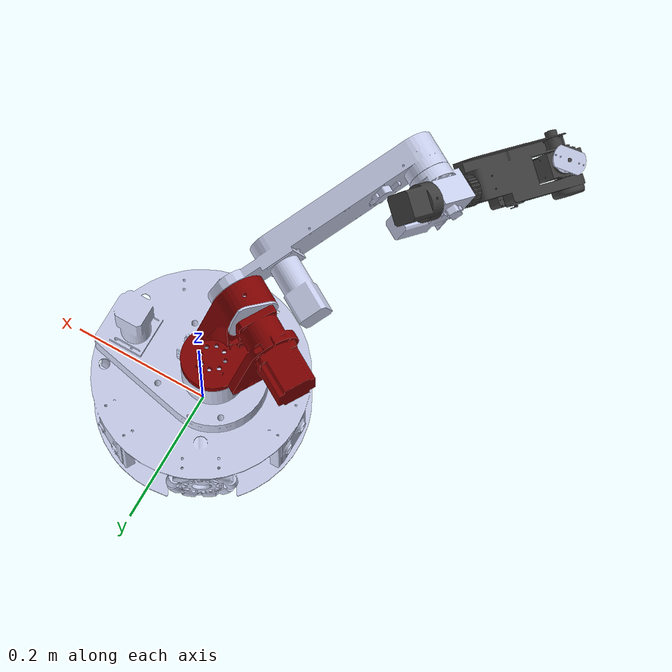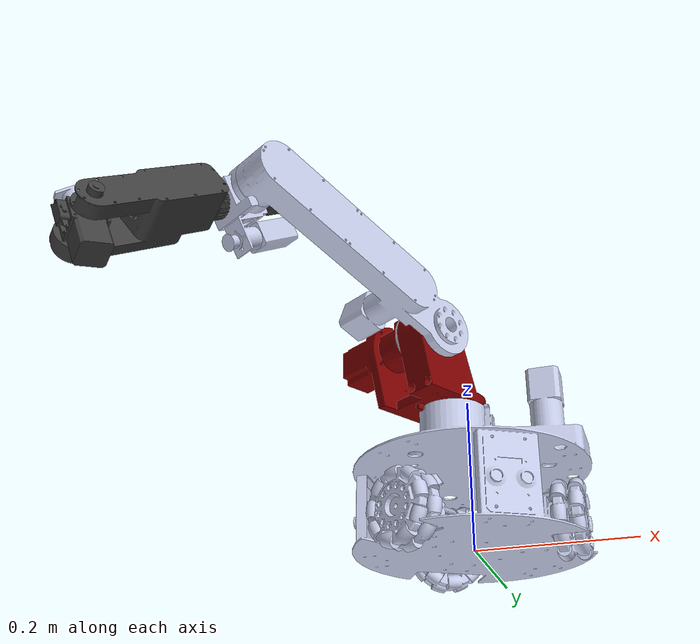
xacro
<?xml version="1.0" encoding="utf-8"?>

<robot name="mrm" xmlns:xacro="http://www.ros.org/wiki/xacro">

  <link name="dummy"> </link>

  <link
    name="base_link">
    <inertial>
      <origin
        xyz="0.0165249628989607 0.00409986602389259 0.0781788290296329"
        rpy="0 0 0" />
      <mass
        value="167.100405445867" />
      <inertia
        ixx="000.389655431629312"
        ixy="537.317989393359E-06"
        ixz="-278.402379892452E-06"
        iyy="000.464142057314943"
        iyz="685.671608678509E-08"
        izz="000.81767891501105" />
    </inertial>
    <visual>
      <origin
        xyz="0 0 0"
        rpy="0 0 0" />
      <geometry>
        <mesh
          filename="package://mrm_description/meshes/base_link.STL" />
      </geometry>
      <material
        name="">
        <color
          rgba="0.792156862745098 0.819607843137255 0.933333333333333 1" />
      </material>
    </visual>
    <collision>
      <origin
        xyz="0 0 0"
        rpy="0 0 0" />
      <geometry>
        <mesh
          filename="package://mrm_description/meshes/base_link.STL" />
      </geometry>
    </collision>
  </link>

  <joint name="dummy_joint" type="fixed">
     <parent link="dummy"/>
     <child link="base_link"/>
  </joint>

  <link
    name="link_01">
    <inertial>
      <origin
        xyz="0.0672767756765975 2.98471164450476E-10 -2.54315929426596E-10"
        rpy="0 0 0" />
      <mass
        value="019.6260586154462" />
      <inertia
        ixx="725.703453165916E-05"
        ixy="-368.01509681729E-12"
        ixz="249.729356473699E-12"
        iyy="403.260652913686E-05"
        iyz="404.539666739104E-12"
        izz="403.260679465834E-05" />
    </inertial>
    <visual>
      <origin
        xyz="0 0 0"
        rpy="0 0 0" />
      <geometry>
        <mesh
          filename="package://mrm_description/meshes/link_01.STL" />
      </geometry>
      <material
        name="">
        <color
          rgba="0.792156862745098 0.819607843137255 0.933333333333333 1" />
      </material>
    </visual>
    <collision>
      <origin
        xyz="0 0 0"
        rpy="0 0 0" />
      <geometry>
        <mesh
          filename="package://mrm_description/meshes/link_01.STL" />
      </geometry>
    </collision>
  </link>
  <joint
    name="base_link__link_01"
    type="continuous">
    <origin
      xyz="-0.0271913742094736 -0.0470968416584263 0.02885"
      rpy="2.85358761494837 0 -2.0943951023932" />
    <parent
      link="base_link" />
    <child
      link="link_01" />
    <axis
      xyz="-1 0 0" />
    <limit effort="100" velocity="100"/>
    <dynamics damping="0.1" friction="0.1" />
  </joint>
  <link
    name="link_02">
    <inertial>
      <origin
        xyz="0.0203119238637717 1.02704067472814E-10 -1.48791812204507E-10"
        rpy="0 0 0" />
      <mass
        value="018.8138057154393" />
      <inertia
        ixx="721.667925935897E-05"
        ixy="314.461314501011E-12"
        ixz="163.704370735285E-12"
        iyy="395.012859157598E-05"
        iyz="-340.546378650128E-12"
        izz="395.012896092445E-05" />
    </inertial>
    <visual>
      <origin
        xyz="0 0 0"
        rpy="0 0 0" />
      <geometry>
        <mesh
          filename="package://mrm_description/meshes/link_02.STL" />
      </geometry>
      <material
        name="">
        <color
          rgba="0.792156862745098 0.819607843137255 0.933333333333333 1" />
      </material>
    </visual>
    <collision>
      <origin
        xyz="0 0 0"
        rpy="0 0 0" />
      <geometry>
        <mesh
          filename="package://mrm_description/meshes/link_02.STL" />
      </geometry>
    </collision>
  </link>
  <joint
    name="base_link__link_02"
    type="continuous">
    <origin
      xyz="0.101764514288352 0 0.02885"
      rpy="-0.0819857576579163 0 0" />
    <parent
      link="base_link" />
    <child
      link="link_02" />
    <axis
      xyz="1 0 0" />
    <limit effort="100" velocity="100"/>
    <dynamics damping="0.1" friction="0.1" />
  </joint>
  <link
    name="link_03">
    <inertial>
      <origin
        xyz="0.00555996459306347 -7.44617145720383E-11 -3.91775001329364E-10"
        rpy="0 0 0" />
      <mass
        value="018.8138059255539" />
      <inertia
        ixx="721.667937235871E-05"
        ixy="-148.975764619711E-12"
        ixz="-370.604573301297E-12"
        iyy="395.012916802367E-05"
        iyz="-291.006406694619E-12"
        izz="395.012851637099E-05" />
    </inertial>
    <visual>
      <origin
        xyz="0 0 0"
        rpy="0 0 0" />
      <geometry>
        <mesh
          filename="package://mrm_description/meshes/link_03.STL" />
      </geometry>
      <material
        name="">
        <color
          rgba="0.792156862745098 0.819607843137255 0.933333333333333 1" />
      </material>
    </visual>
    <collision>
      <origin
        xyz="0 0 0"
        rpy="0 0 0" />
      <geometry>
        <mesh
          filename="package://mrm_description/meshes/link_03.STL" />
      </geometry>
    </collision>
  </link>
  <joint
    name="base_link__link_03"
    type="continuous">
    <origin
      xyz="-0.0582582368342076 0.10090622615623 0.0288500000000003"
      rpy="-3.13075110136062 0 2.09439510239319" />
    <parent
      link="base_link" />
    <child
      link="link_03" />
    <axis
      xyz="-1 0 0" />
    <limit effort="100" velocity="100"/>
    <dynamics damping="0.1" friction="0.1" />
  </joint>
  <link
    name="link_04">
    <inertial>
      <origin
        xyz="0.0267737977753559 0.0531966120716998 0.0584976172989723"
        rpy="0 0 0" />
      <mass
        value="0.716120012709118" />
      <inertia
        ixx="0.000667568460450479"
        ixy="-7.45811090650663E-06"
        ixz="-2.10836884085224E-06"
        iyy="0.000472984526312464"
        iyz="-3.57398050259442E-05"
        izz="0.000476137167059462" />
    </inertial>
    <visual>
      <origin
        xyz="0 0 0"
        rpy="0 0 0" />
      <geometry>
        <mesh
          filename="package://mrm_description/meshes/link_04.STL" />
      </geometry>
      <material
        name="">
        <color
          rgba="0.501960784313725 0 0 1" />
      </material>
    </visual>
    <collision>
      <origin
        xyz="0 0 0"
        rpy="0 0 0" />
      <geometry>
        <mesh
          filename="package://mrm_description/meshes/link_04.STL" />
      </geometry>
    </collision>
  </link>
  <joint
    name="base_link__link_04"
    type="continuous">
    <origin
      xyz="-0.0211233166152997 0 0.191357999999997"
      rpy="0 0 2.6084606796165" />
    <parent
      link="base_link" />
    <child
      link="link_04" />
    <axis
      xyz="0 0 -1" />
    <limit
      effort="10000"
      velocity="100" />
    <dynamics damping="0.1" friction="0.1" />
    <!--effort="0" lower="-3.1416" upper="3.1416" velocity="3.142"-->
  </joint>
  <link
    name="link_05">
    <inertial>
      <origin
        xyz="0.0640275807561449 -0.110344652616036 -0.037695020814677"
        rpy="0 0 0" />
      <mass
        value="0.58205175682887" />
      <inertia
        ixx="0.00199206554691107"
        ixy="0.00101742299801044"
        ixz="2.48796935775158E-08"
        iyy="0.000806564351270633"
        iyz="-4.44898271406962E-08"
        izz="0.00272396951340294" />
    </inertial>
    <visual>
      <origin
        xyz="0 0 0"
        rpy="0 0 0" />
      <geometry>
        <mesh
          filename="package://mrm_description/meshes/link_05.STL" />
      </geometry>
      <material
        name="">
        <color
          rgba="0.792156862745098 0.819607843137255 0.933333333333333 1" />
      </material>
    </visual>
    <collision>
      <origin
        xyz="0 0 0"
        rpy="0 0 0" />
      <geometry>
        <mesh
          filename="package://mrm_description/meshes/link_05.STL" />
      </geometry>
    </collision>
  </link>
  <joint
    name="link_04__link_05"
    type="continuous">
    <origin
      xyz="-0.00196799999999722 0.0641455492719177 0.0825753987384159"
      rpy="1.5707963267949 -1.3832006673965 1.5707963267949" />
    <parent
      link="link_04" />
    <child
      link="link_05" />
    <axis
      xyz="0 0 -1" />
    <limit
      effort="10000"
      velocity="100" />
    <dynamics damping="0.1" friction="0.1" />
    <!--effort="0" lower="-1.5708" upper="2.6180" velocity="3.142"-->
  </joint>
  <link
    name="link_06">
    <inertial>
      <origin
        xyz="6.94705017183217E-05 -0.0241599694485403 0.0289449615619604"
        rpy="0 0 0" />
      <mass
        value="0.187698685431674" />
      <inertia
        ixx="4.81553745640557E-05"
        ixy="5.12245926199012E-07"
        ixz="2.21204236544749E-06"
        iyy="6.59406536224244E-05"
        iyz="-6.52981287991781E-08"
        izz="6.13486695790917E-05" />
    </inertial>
    <visual>
      <origin
        xyz="0 0 0"
        rpy="0 0 0" />
      <geometry>
        <mesh
          filename="package://mrm_description/meshes/link_06.STL" />
      </geometry>
      <material
        name="">
        <color
          rgba="0.792156862745098 0.819607843137255 0.933333333333333 1" />
      </material>
    </visual>
    <collision>
      <origin
        xyz="0 0 0"
        rpy="0 0 0" />
      <geometry>
        <mesh
          filename="package://mrm_description/meshes/link_06.STL" />
      </geometry>
    </collision>
  </link>
  <joint
    name="link_05__link_06"
    type="continuous">
    <origin
      xyz="0.152500019081648 -0.264137747766138 -0.0287449937659318"
      rpy="0 0 -1.95072116701896" />
    <parent
      link="link_05" />
    <child
      link="link_06" />
    <axis
      xyz="0 0 -1" />
    <limit
      effort="10000"
      velocity="100" />
    <dynamics damping="0.1" friction="0.1" />
    <!--effort="0" lower="-4.1539" upper="1.3788" velocity="3.142"-->
  </joint>
  <link
    name="link_07">
    <inertial>
      <origin
        xyz="-0.00589601954278368 -0.000831155179271126 0.164348992799294"
        rpy="0 0 0" />
      <mass
        value="0.336860625407319" />
      <inertia
        ixx="0.0005666364496686"
        ixy="8.03996409195183E-08"
        ixz="5.68429548646166E-07"
        iyy="0.000527444148945868"
        iyz="-1.36522871148927E-06"
        izz="0.000101696969853834" />
    </inertial>
    <visual>
      <origin
        xyz="0 0 0"
        rpy="0 0 0" />
      <geometry>
        <mesh
          filename="package://mrm_description/meshes/link_07.STL" />
      </geometry>
      <material
        name="">
        <color
          rgba="0.250980392156863 0.250980392156863 0.250980392156863 1" />
      </material>
    </visual>
    <collision>
      <origin
        xyz="0 0 0"
        rpy="0 0 0" />
      <geometry>
        <mesh
          filename="package://mrm_description/meshes/link_07.STL" />
      </geometry>
    </collision>
  </link>
  <joint
    name="link_06__link_07"
    type="continuous">
    <origin
      xyz="-0.0776686808334739 0 0.0366999960447778"
      rpy="1.57079632679489 1.20141276283064 1.57079632679488" />
    <parent
      link="link_06" />
    <child
      link="link_07" />
    <axis
      xyz="0 0 -1" />
    <limit
      effort="10000"
      velocity="100" />
    <dynamics damping="0.1" friction="0.1" />
    <!--effort="0" lower="-2.7925" upper="2.7925" velocity="5.585"-->
  </joint>
  <link
    name="link_08">
    <inertial>
      <origin
        xyz="-0.00106778257608331 -0.00219246401165679 -0.0132750790026302"
        rpy="0 0 0" />
      <mass
        value="0.109812409164527" />
      <inertia
        ixx="1.97227966624028E-05"
        ixy="2.08419633342034E-09"
        ixz="-8.46000709502512E-09"
        iyy="2.10234661938835E-05"
        iyz="-6.00168986211762E-08"
        izz="2.06764169924036E-05" />
    </inertial>
    <visual>
      <origin
        xyz="0 0 0"
        rpy="0 0 0" />
      <geometry>
        <mesh
          filename="package://mrm_description/meshes/link_08.STL" />
      </geometry>
      <material
        name="">
        <color
          rgba="0.250980392156863 0.250980392156863 0.250980392156863 1" />
      </material>
    </visual>
    <collision>
      <origin
        xyz="0 0 0"
        rpy="0 0 0" />
      <geometry>
        <mesh
          filename="package://mrm_description/meshes/link_08.STL" />
      </geometry>
    </collision>
  </link>
  <joint
    name="link_07__link_08"
    type="continuous">
    <origin
      xyz="0.00158364432921804 0 0.300299938443155"
      rpy="3.14159265358979 1.21488546129988 -1.5707963267948" />
    <parent
      link="link_07" />
    <child
      link="link_08" />
    <axis
      xyz="0 1 0" />
    <limit
      effort="10000"
      velocity="100" />
    <dynamics damping="0.1" friction="0.1" />
    <!--effort="0" lower="-1.5708" upper="2.3562" velocity="6.632"-->
  </joint>
  <link
    name="link_09">
    <inertial>
      <origin
        xyz="2.50094408932311E-08 9.75714786743964E-10 0.00914323272922141"
        rpy="0 0 0" />
      <mass
        value="0.0138627440376918" />
      <inertia
        ixx="1.35964557900917E-06"
        ixy="2.89200521540229E-13"
        ixz="-4.69760226794587E-15"
        iyy="1.71572077758348E-06"
        iyz="6.33682293437028E-09"
        izz="2.43318056797383E-06" />
    </inertial>
    <visual>
      <origin
        xyz="0 0 0"
        rpy="0 0 0" />
      <geometry>
        <mesh
          filename="package://mrm_description/meshes/link_09.STL" />
      </geometry>
      <material
        name="">
        <color
          rgba="0.792156862745098 0.819607843137255 0.933333333333333 1" />
      </material>
    </visual>
    <collision>
      <origin
        xyz="0 0 0"
        rpy="0 0 0" />
      <geometry>
        <mesh
          filename="package://mrm_description/meshes/link_09.STL" />
      </geometry>
    </collision>
  </link>
  <joint
    name="link_08__link_09"
    type="continuous">
    <origin
      xyz="0 0 0.0202499693561532"
      rpy="0 0 -0.605380923516401" />
    <parent
      link="link_08" />
    <child
      link="link_09" />
    <axis
      xyz="0 0 1" />
    <limit
      effort="10000"
      velocity="100" />
    <dynamics damping="0.1" friction="0.1" />
    <!--effort="0" lower="-3.4907" upper="3.4907" velocity="8.029"-->
  </joint>

  <transmission name="trans_base_link__link_01">
        <type>transmission_interface/SimpleTransmission</type>
        <joint name="base_link__link_01">
                <hardwareInterface>hardware_interface/VelocityJointInterface</hardwareInterface>
        </joint>
        <actuator name="motor_base_link__link_01">
                <hardwareInterface>hardware_interface/VelocityJointInterface</hardwareInterface>
                <mechanicalReduction>1</mechanicalReduction>
        </actuator>
  </transmission>
  <transmission name="trans_base_link__link_02">
        <type>transmission_interface/SimpleTransmission</type>
        <joint name="base_link__link_02">
                <hardwareInterface>hardware_interface/VelocityJointInterface</hardwareInterface>
        </joint>
        <actuator name="motor_base_link__link_02">
                <hardwareInterface>hardware_interface/VelocityJointInterface</hardwareInterface>
                <mechanicalReduction>1</mechanicalReduction>
        </actuator>
  </transmission>
  <transmission name="trans_base_link__link_03">
        <type>transmission_interface/SimpleTransmission</type>
        <joint name="base_link__link_03">
                <hardwareInterface>hardware_interface/VelocityJointInterface</hardwareInterface>
        </joint>
        <actuator name="motor_base_link__link_03">
                <hardwareInterface>hardware_interface/VelocityJointInterface</hardwareInterface>
                <mechanicalReduction>1</mechanicalReduction>
        </actuator>
  </transmission>

  <transmission name="trans_base_link__link_04">
        <type>transmission_interface/SimpleTransmission</type>
        <joint name="base_link__link_04">
                <hardwareInterface>hardware_interface/PositionJointInterface</hardwareInterface>
        </joint>
        <actuator name="motor_base_link__link_04">
                <hardwareInterface>hardware_interface/PositionJointInterface</hardwareInterface>
                <mechanicalReduction>1</mechanicalReduction>
        </actuator>
  </transmission>
  <transmission name="trans_link_04__link_05">
        <type>transmission_interface/SimpleTransmission</type>
        <joint name="link_04__link_05">
                <hardwareInterface>hardware_interface/PositionJointInterface</hardwareInterface>
        </joint>
        <actuator name="motor_link_04__link_05">
                <hardwareInterface>hardware_interface/PositionJointInterface</hardwareInterface>
                <mechanicalReduction>1</mechanicalReduction>
        </actuator>
  </transmission>
  <transmission name="trans_link_05__link_06">
        <type>transmission_interface/SimpleTransmission</type>
        <joint name="link_05__link_06">
                <hardwareInterface>hardware_interface/PositionJointInterface</hardwareInterface>
        </joint>
        <actuator name="motor_link_05__link_06">
                <hardwareInterface>hardware_interface/PositionJointInterface</hardwareInterface>
                <mechanicalReduction>1</mechanicalReduction>
        </actuator>
  </transmission>
  <transmission name="trans_link_06__link_07">
        <type>transmission_interface/SimpleTransmission</type>
        <joint name="link_06__link_07">
                <hardwareInterface>hardware_interface/PositionJointInterface</hardwareInterface>
        </joint>
        <actuator name="motor_link_06__link_07">
                <hardwareInterface>hardware_interface/PositionJointInterface</hardwareInterface>
                <mechanicalReduction>1</mechanicalReduction>
        </actuator>
  </transmission>
  <transmission name="trans_link_07__link_08">
        <type>transmission_interface/SimpleTransmission</type>
        <joint name="link_07__link_08">
                <hardwareInterface>hardware_interface/PositionJointInterface</hardwareInterface>
        </joint>
        <actuator name="motor_link_07__link_08">
                <hardwareInterface>hardware_interface/PositionJointInterface</hardwareInterface>
                <mechanicalReduction>1</mechanicalReduction>
        </actuator>
  </transmission>
  <transmission name="trans_link_08__link_09">
        <type>transmission_interface/SimpleTransmission</type>
        <joint name="link_08__link_09">
                <hardwareInterface>hardware_interface/PositionJointInterface</hardwareInterface>
        </joint>
        <actuator name="motor_link_08__link_09">
                <hardwareInterface>hardware_interface/PositionJointInterface</hardwareInterface>
                <mechanicalReduction>1</mechanicalReduction>
        </actuator>
  </transmission>

  <gazebo>
    <plugin name="gazebo_ros_control" filename="libgazebo_ros_control.so">
      <robotSimType>gazebo_ros_control/DefaultRobotHWSim</robotSimType>
      <legacyModeNS>true</legacyModeNS>
    </plugin>
  </gazebo>
  <gazebo>
    <plugin name="object_controller" filename="libgazebo_ros_planar_move.so">
      <commandTopic>cmd_vel</commandTopic>
      <odometryTopic>odom</odometryTopic>
      <odometryFrame>odom</odometryFrame>
      <odometryRate>20.0</odometryRate>
      <robotBaseFrame>dummy</robotBaseFrame>
    </plugin>
  </gazebo>

</robot>
